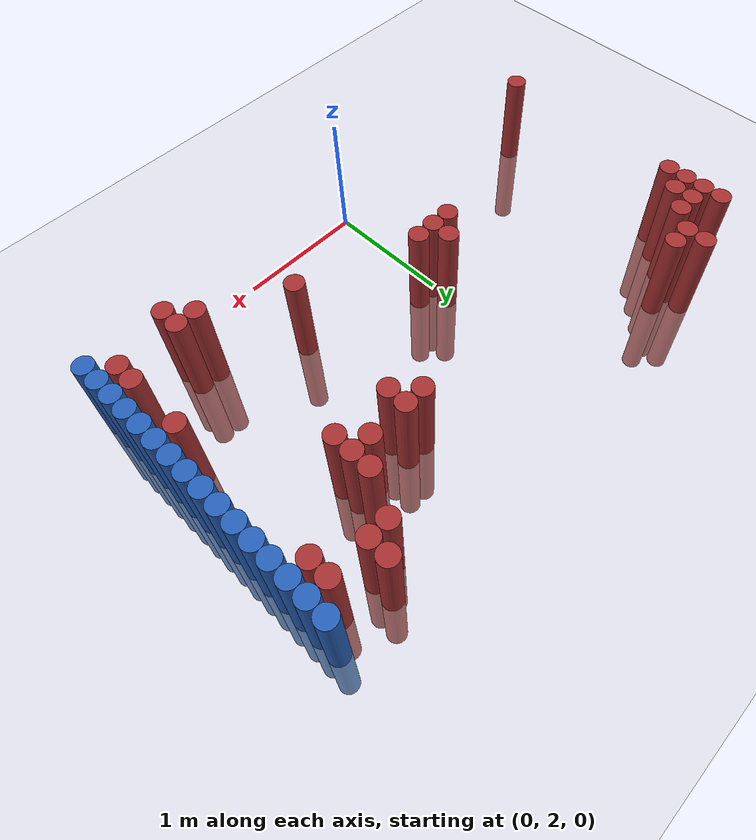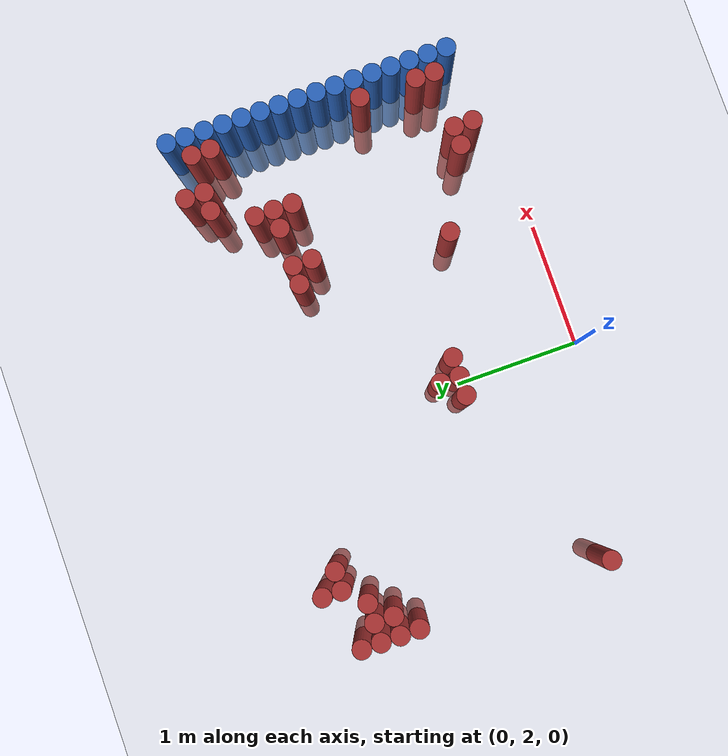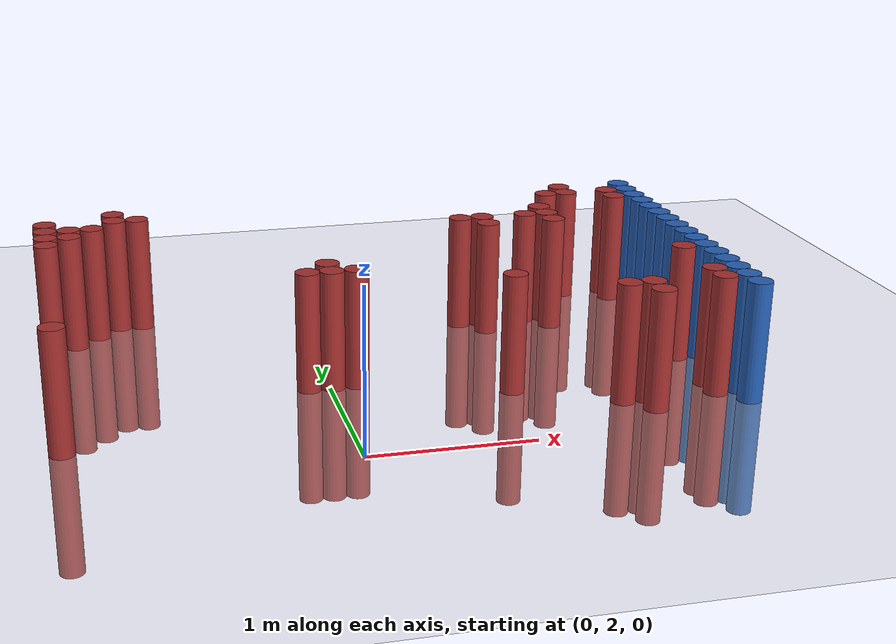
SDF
<sdf version="1.6">
 <world name="default">
  <model name="ground_plane">
   <static>1</static>
   <link name="link">
    <collision name="collision">
     <geometry><plane><normal>0 0 1</normal><size>100 100</size></plane></geometry>
     <surface><friction><ode><mu>100</mu><mu2>50</mu2></ode></friction></surface>
    </collision>
    <visual name="visual">
     <cast_shadows>0</cast_shadows>
     <geometry><plane><normal>0 0 1</normal><size>100 100</size></plane></geometry>
     <material>
      <script><uri>file://media/materials/scripts/gazebo.material</uri><name>Gazebo/Grey</name></script>
     </material>
    </visual>
   </link>
  </model>
  <model name="unit_cylinder_149">
   <static>1</static>
   <pose>-1.625000 2.425000 0.000000 0.000000 0.000000 0.000000</pose>
   <link name="link">
    <inertial>
     <mass>1</mass>
     <inertia><ixx>0.145833</ixx><ixy>0</ixy><ixz>0</ixz><iyy>0.145833</iyy><iyz>0</iyz><izz>0.125</izz></inertia>
    </inertial>
    <collision name="collision">
     <geometry><cylinder><radius>0.075000</radius><length>1.5</length></cylinder></geometry>
    </collision>
    <visual name="visual">
     <geometry><cylinder><radius>0.075000</radius><length>1.5</length></cylinder></geometry>
     <material>
      <ambient>0.648000 0.192000 0.192000 1</ambient>
      <diffuse>0.648000 0.192000 0.192000 1</diffuse>
     </material>
     <material>
      <script><name>Gazebo/Grey</name><uri>file://media/materials/scripts/gazebo.material</uri></script>
     </material>
    </visual>
   </link>
  </model>
  <model name="unit_cylinder_150">
   <static>1</static>
   <pose>-1.625000 3.925000 0.000000 0.000000 0.000000 0.000000</pose>
   <link name="link">
    <inertial>
     <mass>1</mass>
     <inertia><ixx>0.145833</ixx><ixy>0</ixy><ixz>0</ixz><iyy>0.145833</iyy><iyz>0</iyz><izz>0.125</izz></inertia>
    </inertial>
    <collision name="collision">
     <geometry><cylinder><radius>0.075000</radius><length>1.5</length></cylinder></geometry>
    </collision>
    <visual name="visual">
     <geometry><cylinder><radius>0.075000</radius><length>1.5</length></cylinder></geometry>
     <material>
      <ambient>0.648000 0.192000 0.192000 1</ambient>
      <diffuse>0.648000 0.192000 0.192000 1</diffuse>
     </material>
     <material>
      <script><name>Gazebo/Grey</name><uri>file://media/materials/scripts/gazebo.material</uri></script>
     </material>
    </visual>
   </link>
  </model>
  <model name="unit_cylinder_151">
   <static>1</static>
   <pose>-1.625000 4.075000 0.000000 0.000000 0.000000 0.000000</pose>
   <link name="link">
    <inertial>
     <mass>1</mass>
     <inertia><ixx>0.145833</ixx><ixy>0</ixy><ixz>0</ixz><iyy>0.145833</iyy><iyz>0</iyz><izz>0.125</izz></inertia>
    </inertial>
    <collision name="collision">
     <geometry><cylinder><radius>0.075000</radius><length>1.5</length></cylinder></geometry>
    </collision>
    <visual name="visual">
     <geometry><cylinder><radius>0.075000</radius><length>1.5</length></cylinder></geometry>
     <material>
      <ambient>0.648000 0.192000 0.192000 1</ambient>
      <diffuse>0.648000 0.192000 0.192000 1</diffuse>
     </material>
     <material>
      <script><name>Gazebo/Grey</name><uri>file://media/materials/scripts/gazebo.material</uri></script>
     </material>
    </visual>
   </link>
  </model>
  <model name="unit_cylinder_152">
   <static>1</static>
   <pose>-1.625000 4.225000 0.000000 0.000000 0.000000 0.000000</pose>
   <link name="link">
    <inertial>
     <mass>1</mass>
     <inertia><ixx>0.145833</ixx><ixy>0</ixy><ixz>0</ixz><iyy>0.145833</iyy><iyz>0</iyz><izz>0.125</izz></inertia>
    </inertial>
    <collision name="collision">
     <geometry><cylinder><radius>0.075000</radius><length>1.5</length></cylinder></geometry>
    </collision>
    <visual name="visual">
     <geometry><cylinder><radius>0.075000</radius><length>1.5</length></cylinder></geometry>
     <material>
      <ambient>0.648000 0.192000 0.192000 1</ambient>
      <diffuse>0.648000 0.192000 0.192000 1</diffuse>
     </material>
     <material>
      <script><name>Gazebo/Grey</name><uri>file://media/materials/scripts/gazebo.material</uri></script>
     </material>
    </visual>
   </link>
  </model>
  <model name="unit_cylinder_153">
   <static>1</static>
   <pose>-1.625000 4.375000 0.000000 0.000000 0.000000 0.000000</pose>
   <link name="link">
    <inertial>
     <mass>1</mass>
     <inertia><ixx>0.145833</ixx><ixy>0</ixy><ixz>0</ixz><iyy>0.145833</iyy><iyz>0</iyz><izz>0.125</izz></inertia>
    </inertial>
    <collision name="collision">
     <geometry><cylinder><radius>0.075000</radius><length>1.5</length></cylinder></geometry>
    </collision>
    <visual name="visual">
     <geometry><cylinder><radius>0.075000</radius><length>1.5</length></cylinder></geometry>
     <material>
      <ambient>0.648000 0.192000 0.192000 1</ambient>
      <diffuse>0.648000 0.192000 0.192000 1</diffuse>
     </material>
     <material>
      <script><name>Gazebo/Grey</name><uri>file://media/materials/scripts/gazebo.material</uri></script>
     </material>
    </visual>
   </link>
  </model>
  <model name="unit_cylinder_159">
   <static>1</static>
   <pose>-1.475000 4.075000 0.000000 0.000000 0.000000 0.000000</pose>
   <link name="link">
    <inertial>
     <mass>1</mass>
     <inertia><ixx>0.145833</ixx><ixy>0</ixy><ixz>0</ixz><iyy>0.145833</iyy><iyz>0</iyz><izz>0.125</izz></inertia>
    </inertial>
    <collision name="collision">
     <geometry><cylinder><radius>0.075000</radius><length>1.5</length></cylinder></geometry>
    </collision>
    <visual name="visual">
     <geometry><cylinder><radius>0.075000</radius><length>1.5</length></cylinder></geometry>
     <material>
      <ambient>0.648000 0.192000 0.192000 1</ambient>
      <diffuse>0.648000 0.192000 0.192000 1</diffuse>
     </material>
     <material>
      <script><name>Gazebo/Grey</name><uri>file://media/materials/scripts/gazebo.material</uri></script>
     </material>
    </visual>
   </link>
  </model>
  <model name="unit_cylinder_160">
   <static>1</static>
   <pose>-1.475000 4.225000 0.000000 0.000000 0.000000 0.000000</pose>
   <link name="link">
    <inertial>
     <mass>1</mass>
     <inertia><ixx>0.145833</ixx><ixy>0</ixy><ixz>0</ixz><iyy>0.145833</iyy><iyz>0</iyz><izz>0.125</izz></inertia>
    </inertial>
    <collision name="collision">
     <geometry><cylinder><radius>0.075000</radius><length>1.5</length></cylinder></geometry>
    </collision>
    <visual name="visual">
     <geometry><cylinder><radius>0.075000</radius><length>1.5</length></cylinder></geometry>
     <material>
      <ambient>0.648000 0.192000 0.192000 1</ambient>
      <diffuse>0.648000 0.192000 0.192000 1</diffuse>
     </material>
     <material>
      <script><name>Gazebo/Grey</name><uri>file://media/materials/scripts/gazebo.material</uri></script>
     </material>
    </visual>
   </link>
  </model>
  <model name="unit_cylinder_163">
   <static>1</static>
   <pose>-1.325000 4.225000 0.000000 0.000000 0.000000 0.000000</pose>
   <link name="link">
    <inertial>
     <mass>1</mass>
     <inertia><ixx>0.145833</ixx><ixy>0</ixy><ixz>0</ixz><iyy>0.145833</iyy><iyz>0</iyz><izz>0.125</izz></inertia>
    </inertial>
    <collision name="collision">
     <geometry><cylinder><radius>0.075000</radius><length>1.5</length></cylinder></geometry>
    </collision>
    <visual name="visual">
     <geometry><cylinder><radius>0.075000</radius><length>1.5</length></cylinder></geometry>
     <material>
      <ambient>0.648000 0.192000 0.192000 1</ambient>
      <diffuse>0.648000 0.192000 0.192000 1</diffuse>
     </material>
     <material>
      <script><name>Gazebo/Grey</name><uri>file://media/materials/scripts/gazebo.material</uri></script>
     </material>
    </visual>
   </link>
  </model>
  <model name="unit_cylinder_165">
   <static>1</static>
   <pose>-1.175000 4.375000 0.000000 0.000000 0.000000 0.000000</pose>
   <link name="link">
    <inertial>
     <mass>1</mass>
     <inertia><ixx>0.145833</ixx><ixy>0</ixy><ixz>0</ixz><iyy>0.145833</iyy><iyz>0</iyz><izz>0.125</izz></inertia>
    </inertial>
    <collision name="collision">
     <geometry><cylinder><radius>0.075000</radius><length>1.5</length></cylinder></geometry>
    </collision>
    <visual name="visual">
     <geometry><cylinder><radius>0.075000</radius><length>1.5</length></cylinder></geometry>
     <material>
      <ambient>0.648000 0.192000 0.192000 1</ambient>
      <diffuse>0.648000 0.192000 0.192000 1</diffuse>
     </material>
     <material>
      <script><name>Gazebo/Grey</name><uri>file://media/materials/scripts/gazebo.material</uri></script>
     </material>
    </visual>
   </link>
  </model>
  <model name="unit_cylinder_166">
   <static>1</static>
   <pose>-1.175000 4.525000 0.000000 0.000000 0.000000 0.000000</pose>
   <link name="link">
    <inertial>
     <mass>1</mass>
     <inertia><ixx>0.145833</ixx><ixy>0</ixy><ixz>0</ixz><iyy>0.145833</iyy><iyz>0</iyz><izz>0.125</izz></inertia>
    </inertial>
    <collision name="collision">
     <geometry><cylinder><radius>0.075000</radius><length>1.5</length></cylinder></geometry>
    </collision>
    <visual name="visual">
     <geometry><cylinder><radius>0.075000</radius><length>1.5</length></cylinder></geometry>
     <material>
      <ambient>0.648000 0.192000 0.192000 1</ambient>
      <diffuse>0.648000 0.192000 0.192000 1</diffuse>
     </material>
     <material>
      <script><name>Gazebo/Grey</name><uri>file://media/materials/scripts/gazebo.material</uri></script>
     </material>
    </visual>
   </link>
  </model>
  <model name="unit_cylinder_167">
   <static>1</static>
   <pose>-1.025000 4.375000 0.000000 0.000000 0.000000 0.000000</pose>
   <link name="link">
    <inertial>
     <mass>1</mass>
     <inertia><ixx>0.145833</ixx><ixy>0</ixy><ixz>0</ixz><iyy>0.145833</iyy><iyz>0</iyz><izz>0.125</izz></inertia>
    </inertial>
    <collision name="collision">
     <geometry><cylinder><radius>0.075000</radius><length>1.5</length></cylinder></geometry>
    </collision>
    <visual name="visual">
     <geometry><cylinder><radius>0.075000</radius><length>1.5</length></cylinder></geometry>
     <material>
      <ambient>0.648000 0.192000 0.192000 1</ambient>
      <diffuse>0.648000 0.192000 0.192000 1</diffuse>
     </material>
     <material>
      <script><name>Gazebo/Grey</name><uri>file://media/materials/scripts/gazebo.material</uri></script>
     </material>
    </visual>
   </link>
  </model>
  <model name="unit_cylinder_168">
   <static>1</static>
   <pose>-0.125000 3.025000 0.000000 0.000000 0.000000 0.000000</pose>
   <link name="link">
    <inertial>
     <mass>1</mass>
     <inertia><ixx>0.145833</ixx><ixy>0</ixy><ixz>0</ixz><iyy>0.145833</iyy><iyz>0</iyz><izz>0.125</izz></inertia>
    </inertial>
    <collision name="collision">
     <geometry><cylinder><radius>0.075000</radius><length>1.5</length></cylinder></geometry>
    </collision>
    <visual name="visual">
     <geometry><cylinder><radius>0.075000</radius><length>1.5</length></cylinder></geometry>
     <material>
      <ambient>0.648000 0.192000 0.192000 1</ambient>
      <diffuse>0.648000 0.192000 0.192000 1</diffuse>
     </material>
     <material>
      <script><name>Gazebo/Grey</name><uri>file://media/materials/scripts/gazebo.material</uri></script>
     </material>
    </visual>
   </link>
  </model>
  <model name="unit_cylinder_170">
   <static>1</static>
   <pose>0.025000 3.025000 0.000000 0.000000 0.000000 0.000000</pose>
   <link name="link">
    <inertial>
     <mass>1</mass>
     <inertia><ixx>0.145833</ixx><ixy>0</ixy><ixz>0</ixz><iyy>0.145833</iyy><iyz>0</iyz><izz>0.125</izz></inertia>
    </inertial>
    <collision name="collision">
     <geometry><cylinder><radius>0.075000</radius><length>1.5</length></cylinder></geometry>
    </collision>
    <visual name="visual">
     <geometry><cylinder><radius>0.075000</radius><length>1.5</length></cylinder></geometry>
     <material>
      <ambient>0.648000 0.192000 0.192000 1</ambient>
      <diffuse>0.648000 0.192000 0.192000 1</diffuse>
     </material>
     <material>
      <script><name>Gazebo/Grey</name><uri>file://media/materials/scripts/gazebo.material</uri></script>
     </material>
    </visual>
   </link>
  </model>
  <model name="unit_cylinder_171">
   <static>1</static>
   <pose>0.025000 3.175000 0.000000 0.000000 0.000000 0.000000</pose>
   <link name="link">
    <inertial>
     <mass>1</mass>
     <inertia><ixx>0.145833</ixx><ixy>0</ixy><ixz>0</ixz><iyy>0.145833</iyy><iyz>0</iyz><izz>0.125</izz></inertia>
    </inertial>
    <collision name="collision">
     <geometry><cylinder><radius>0.075000</radius><length>1.5</length></cylinder></geometry>
    </collision>
    <visual name="visual">
     <geometry><cylinder><radius>0.075000</radius><length>1.5</length></cylinder></geometry>
     <material>
      <ambient>0.648000 0.192000 0.192000 1</ambient>
      <diffuse>0.648000 0.192000 0.192000 1</diffuse>
     </material>
     <material>
      <script><name>Gazebo/Grey</name><uri>file://media/materials/scripts/gazebo.material</uri></script>
     </material>
    </visual>
   </link>
  </model>
  <model name="unit_cylinder_175">
   <static>1</static>
   <pose>0.175000 3.025000 0.000000 0.000000 0.000000 0.000000</pose>
   <link name="link">
    <inertial>
     <mass>1</mass>
     <inertia><ixx>0.145833</ixx><ixy>0</ixy><ixz>0</ixz><iyy>0.145833</iyy><iyz>0</iyz><izz>0.125</izz></inertia>
    </inertial>
    <collision name="collision">
     <geometry><cylinder><radius>0.075000</radius><length>1.5</length></cylinder></geometry>
    </collision>
    <visual name="visual">
     <geometry><cylinder><radius>0.075000</radius><length>1.5</length></cylinder></geometry>
     <material>
      <ambient>0.648000 0.192000 0.192000 1</ambient>
      <diffuse>0.648000 0.192000 0.192000 1</diffuse>
     </material>
     <material>
      <script><name>Gazebo/Grey</name><uri>file://media/materials/scripts/gazebo.material</uri></script>
     </material>
    </visual>
   </link>
  </model>
  <model name="unit_cylinder_179">
   <static>1</static>
   <pose>1.075000 2.725000 0.000000 0.000000 0.000000 0.000000</pose>
   <link name="link">
    <inertial>
     <mass>1</mass>
     <inertia><ixx>0.145833</ixx><ixy>0</ixy><ixz>0</ixz><iyy>0.145833</iyy><iyz>0</iyz><izz>0.125</izz></inertia>
    </inertial>
    <collision name="collision">
     <geometry><cylinder><radius>0.075000</radius><length>1.5</length></cylinder></geometry>
    </collision>
    <visual name="visual">
     <geometry><cylinder><radius>0.075000</radius><length>1.5</length></cylinder></geometry>
     <material>
      <ambient>0.648000 0.192000 0.192000 1</ambient>
      <diffuse>0.648000 0.192000 0.192000 1</diffuse>
     </material>
     <material>
      <script><name>Gazebo/Grey</name><uri>file://media/materials/scripts/gazebo.material</uri></script>
     </material>
    </visual>
   </link>
  </model>
  <model name="unit_cylinder_180">
   <static>1</static>
   <pose>1.075000 3.925000 0.000000 0.000000 0.000000 0.000000</pose>
   <link name="link">
    <inertial>
     <mass>1</mass>
     <inertia><ixx>0.145833</ixx><ixy>0</ixy><ixz>0</ixz><iyy>0.145833</iyy><iyz>0</iyz><izz>0.125</izz></inertia>
    </inertial>
    <collision name="collision">
     <geometry><cylinder><radius>0.075000</radius><length>1.5</length></cylinder></geometry>
    </collision>
    <visual name="visual">
     <geometry><cylinder><radius>0.075000</radius><length>1.5</length></cylinder></geometry>
     <material>
      <ambient>0.648000 0.192000 0.192000 1</ambient>
      <diffuse>0.648000 0.192000 0.192000 1</diffuse>
     </material>
     <material>
      <script><name>Gazebo/Grey</name><uri>file://media/materials/scripts/gazebo.material</uri></script>
     </material>
    </visual>
   </link>
  </model>
  <model name="unit_cylinder_182">
   <static>1</static>
   <pose>1.225000 3.775000 0.000000 0.000000 0.000000 0.000000</pose>
   <link name="link">
    <inertial>
     <mass>1</mass>
     <inertia><ixx>0.145833</ixx><ixy>0</ixy><ixz>0</ixz><iyy>0.145833</iyy><iyz>0</iyz><izz>0.125</izz></inertia>
    </inertial>
    <collision name="collision">
     <geometry><cylinder><radius>0.075000</radius><length>1.5</length></cylinder></geometry>
    </collision>
    <visual name="visual">
     <geometry><cylinder><radius>0.075000</radius><length>1.5</length></cylinder></geometry>
     <material>
      <ambient>0.648000 0.192000 0.192000 1</ambient>
      <diffuse>0.648000 0.192000 0.192000 1</diffuse>
     </material>
     <material>
      <script><name>Gazebo/Grey</name><uri>file://media/materials/scripts/gazebo.material</uri></script>
     </material>
    </visual>
   </link>
  </model>
  <model name="unit_cylinder_183">
   <static>1</static>
   <pose>1.225000 3.925000 0.000000 0.000000 0.000000 0.000000</pose>
   <link name="link">
    <inertial>
     <mass>1</mass>
     <inertia><ixx>0.145833</ixx><ixy>0</ixy><ixz>0</ixz><iyy>0.145833</iyy><iyz>0</iyz><izz>0.125</izz></inertia>
    </inertial>
    <collision name="collision">
     <geometry><cylinder><radius>0.075000</radius><length>1.5</length></cylinder></geometry>
    </collision>
    <visual name="visual">
     <geometry><cylinder><radius>0.075000</radius><length>1.5</length></cylinder></geometry>
     <material>
      <ambient>0.648000 0.192000 0.192000 1</ambient>
      <diffuse>0.648000 0.192000 0.192000 1</diffuse>
     </material>
     <material>
      <script><name>Gazebo/Grey</name><uri>file://media/materials/scripts/gazebo.material</uri></script>
     </material>
    </visual>
   </link>
  </model>
  <model name="unit_cylinder_184">
   <static>1</static>
   <pose>1.525000 3.925000 0.000000 0.000000 0.000000 0.000000</pose>
   <link name="link">
    <inertial>
     <mass>1</mass>
     <inertia><ixx>0.145833</ixx><ixy>0</ixy><ixz>0</ixz><iyy>0.145833</iyy><iyz>0</iyz><izz>0.125</izz></inertia>
    </inertial>
    <collision name="collision">
     <geometry><cylinder><radius>0.075000</radius><length>1.5</length></cylinder></geometry>
    </collision>
    <visual name="visual">
     <geometry><cylinder><radius>0.075000</radius><length>1.5</length></cylinder></geometry>
     <material>
      <ambient>0.648000 0.192000 0.192000 1</ambient>
      <diffuse>0.648000 0.192000 0.192000 1</diffuse>
     </material>
     <material>
      <script><name>Gazebo/Grey</name><uri>file://media/materials/scripts/gazebo.material</uri></script>
     </material>
    </visual>
   </link>
  </model>
  <model name="unit_cylinder_186">
   <static>1</static>
   <pose>1.675000 2.425000 0.000000 0.000000 0.000000 0.000000</pose>
   <link name="link">
    <inertial>
     <mass>1</mass>
     <inertia><ixx>0.145833</ixx><ixy>0</ixy><ixz>0</ixz><iyy>0.145833</iyy><iyz>0</iyz><izz>0.125</izz></inertia>
    </inertial>
    <collision name="collision">
     <geometry><cylinder><radius>0.075000</radius><length>1.5</length></cylinder></geometry>
    </collision>
    <visual name="visual">
     <geometry><cylinder><radius>0.075000</radius><length>1.5</length></cylinder></geometry>
     <material>
      <ambient>0.648000 0.192000 0.192000 1</ambient>
      <diffuse>0.648000 0.192000 0.192000 1</diffuse>
     </material>
     <material>
      <script><name>Gazebo/Grey</name><uri>file://media/materials/scripts/gazebo.material</uri></script>
     </material>
    </visual>
   </link>
  </model>
  <model name="unit_cylinder_187">
   <static>1</static>
   <pose>1.675000 3.775000 0.000000 0.000000 0.000000 0.000000</pose>
   <link name="link">
    <inertial>
     <mass>1</mass>
     <inertia><ixx>0.145833</ixx><ixy>0</ixy><ixz>0</ixz><iyy>0.145833</iyy><iyz>0</iyz><izz>0.125</izz></inertia>
    </inertial>
    <collision name="collision">
     <geometry><cylinder><radius>0.075000</radius><length>1.5</length></cylinder></geometry>
    </collision>
    <visual name="visual">
     <geometry><cylinder><radius>0.075000</radius><length>1.5</length></cylinder></geometry>
     <material>
      <ambient>0.648000 0.192000 0.192000 1</ambient>
      <diffuse>0.648000 0.192000 0.192000 1</diffuse>
     </material>
     <material>
      <script><name>Gazebo/Grey</name><uri>file://media/materials/scripts/gazebo.material</uri></script>
     </material>
    </visual>
   </link>
  </model>
  <model name="unit_cylinder_188">
   <static>1</static>
   <pose>1.675000 3.925000 0.000000 0.000000 0.000000 0.000000</pose>
   <link name="link">
    <inertial>
     <mass>1</mass>
     <inertia><ixx>0.145833</ixx><ixy>0</ixy><ixz>0</ixz><iyy>0.145833</iyy><iyz>0</iyz><izz>0.125</izz></inertia>
    </inertial>
    <collision name="collision">
     <geometry><cylinder><radius>0.075000</radius><length>1.5</length></cylinder></geometry>
    </collision>
    <visual name="visual">
     <geometry><cylinder><radius>0.075000</radius><length>1.5</length></cylinder></geometry>
     <material>
      <ambient>0.648000 0.192000 0.192000 1</ambient>
      <diffuse>0.648000 0.192000 0.192000 1</diffuse>
     </material>
     <material>
      <script><name>Gazebo/Grey</name><uri>file://media/materials/scripts/gazebo.material</uri></script>
     </material>
    </visual>
   </link>
  </model>
  <model name="unit_cylinder_189">
   <static>1</static>
   <pose>1.675000 4.075000 0.000000 0.000000 0.000000 0.000000</pose>
   <link name="link">
    <inertial>
     <mass>1</mass>
     <inertia><ixx>0.145833</ixx><ixy>0</ixy><ixz>0</ixz><iyy>0.145833</iyy><iyz>0</iyz><izz>0.125</izz></inertia>
    </inertial>
    <collision name="collision">
     <geometry><cylinder><radius>0.075000</radius><length>1.5</length></cylinder></geometry>
    </collision>
    <visual name="visual">
     <geometry><cylinder><radius>0.075000</radius><length>1.5</length></cylinder></geometry>
     <material>
      <ambient>0.648000 0.192000 0.192000 1</ambient>
      <diffuse>0.648000 0.192000 0.192000 1</diffuse>
     </material>
     <material>
      <script><name>Gazebo/Grey</name><uri>file://media/materials/scripts/gazebo.material</uri></script>
     </material>
    </visual>
   </link>
  </model>
  <model name="unit_cylinder_194">
   <static>1</static>
   <pose>1.825000 2.275000 0.000000 0.000000 0.000000 0.000000</pose>
   <link name="link">
    <inertial>
     <mass>1</mass>
     <inertia><ixx>0.145833</ixx><ixy>0</ixy><ixz>0</ixz><iyy>0.145833</iyy><iyz>0</iyz><izz>0.125</izz></inertia>
    </inertial>
    <collision name="collision">
     <geometry><cylinder><radius>0.075000</radius><length>1.5</length></cylinder></geometry>
    </collision>
    <visual name="visual">
     <geometry><cylinder><radius>0.075000</radius><length>1.5</length></cylinder></geometry>
     <material>
      <ambient>0.648000 0.192000 0.192000 1</ambient>
      <diffuse>0.648000 0.192000 0.192000 1</diffuse>
     </material>
     <material>
      <script><name>Gazebo/Grey</name><uri>file://media/materials/scripts/gazebo.material</uri></script>
     </material>
    </visual>
   </link>
  </model>
  <model name="unit_cylinder_195">
   <static>1</static>
   <pose>1.825000 2.425000 0.000000 0.000000 0.000000 0.000000</pose>
   <link name="link">
    <inertial>
     <mass>1</mass>
     <inertia><ixx>0.145833</ixx><ixy>0</ixy><ixz>0</ixz><iyy>0.145833</iyy><iyz>0</iyz><izz>0.125</izz></inertia>
    </inertial>
    <collision name="collision">
     <geometry><cylinder><radius>0.075000</radius><length>1.5</length></cylinder></geometry>
    </collision>
    <visual name="visual">
     <geometry><cylinder><radius>0.075000</radius><length>1.5</length></cylinder></geometry>
     <material>
      <ambient>0.648000 0.192000 0.192000 1</ambient>
      <diffuse>0.648000 0.192000 0.192000 1</diffuse>
     </material>
     <material>
      <script><name>Gazebo/Grey</name><uri>file://media/materials/scripts/gazebo.material</uri></script>
     </material>
    </visual>
   </link>
  </model>
  <model name="unit_cylinder_196">
   <static>1</static>
   <pose>1.825000 4.375000 0.000000 0.000000 0.000000 0.000000</pose>
   <link name="link">
    <inertial>
     <mass>1</mass>
     <inertia><ixx>0.145833</ixx><ixy>0</ixy><ixz>0</ixz><iyy>0.145833</iyy><iyz>0</iyz><izz>0.125</izz></inertia>
    </inertial>
    <collision name="collision">
     <geometry><cylinder><radius>0.075000</radius><length>1.5</length></cylinder></geometry>
    </collision>
    <visual name="visual">
     <geometry><cylinder><radius>0.075000</radius><length>1.5</length></cylinder></geometry>
     <material>
      <ambient>0.648000 0.192000 0.192000 1</ambient>
      <diffuse>0.648000 0.192000 0.192000 1</diffuse>
     </material>
     <material>
      <script><name>Gazebo/Grey</name><uri>file://media/materials/scripts/gazebo.material</uri></script>
     </material>
    </visual>
   </link>
  </model>
  <model name="unit_cylinder_198">
   <static>1</static>
   <pose>1.975000 4.375000 0.000000 0.000000 0.000000 0.000000</pose>
   <link name="link">
    <inertial>
     <mass>1</mass>
     <inertia><ixx>0.145833</ixx><ixy>0</ixy><ixz>0</ixz><iyy>0.145833</iyy><iyz>0</iyz><izz>0.125</izz></inertia>
    </inertial>
    <collision name="collision">
     <geometry><cylinder><radius>0.075000</radius><length>1.5</length></cylinder></geometry>
    </collision>
    <visual name="visual">
     <geometry><cylinder><radius>0.075000</radius><length>1.5</length></cylinder></geometry>
     <material>
      <ambient>0.648000 0.192000 0.192000 1</ambient>
      <diffuse>0.648000 0.192000 0.192000 1</diffuse>
     </material>
     <material>
      <script><name>Gazebo/Grey</name><uri>file://media/materials/scripts/gazebo.material</uri></script>
     </material>
    </visual>
   </link>
  </model>
  <model name="unit_cylinder_199">
   <static>1</static>
   <pose>1.975000 4.525000 0.000000 0.000000 0.000000 0.000000</pose>
   <link name="link">
    <inertial>
     <mass>1</mass>
     <inertia><ixx>0.145833</ixx><ixy>0</ixy><ixz>0</ixz><iyy>0.145833</iyy><iyz>0</iyz><izz>0.125</izz></inertia>
    </inertial>
    <collision name="collision">
     <geometry><cylinder><radius>0.075000</radius><length>1.5</length></cylinder></geometry>
    </collision>
    <visual name="visual">
     <geometry><cylinder><radius>0.075000</radius><length>1.5</length></cylinder></geometry>
     <material>
      <ambient>0.648000 0.192000 0.192000 1</ambient>
      <diffuse>0.648000 0.192000 0.192000 1</diffuse>
     </material>
     <material>
      <script><name>Gazebo/Grey</name><uri>file://media/materials/scripts/gazebo.material</uri></script>
     </material>
    </visual>
   </link>
  </model>
  <model name="unit_cylinder_216">
   <static>1</static>
   <pose>2.275000 2.425000 0.000000 0.000000 0.000000 0.000000</pose>
   <link name="link">
    <inertial>
     <mass>1</mass>
     <inertia><ixx>0.145833</ixx><ixy>0</ixy><ixz>0</ixz><iyy>0.145833</iyy><iyz>0</iyz><izz>0.125</izz></inertia>
    </inertial>
    <collision name="collision">
     <geometry><cylinder><radius>0.075000</radius><length>1.5</length></cylinder></geometry>
    </collision>
    <visual name="visual">
     <geometry><cylinder><radius>0.075000</radius><length>1.5</length></cylinder></geometry>
     <material>
      <ambient>0.648000 0.192000 0.192000 1</ambient>
      <diffuse>0.648000 0.192000 0.192000 1</diffuse>
     </material>
     <material>
      <script><name>Gazebo/Grey</name><uri>file://media/materials/scripts/gazebo.material</uri></script>
     </material>
    </visual>
   </link>
  </model>
  <model name="unit_cylinder_217">
   <static>1</static>
   <pose>2.275000 2.575000 0.000000 0.000000 0.000000 0.000000</pose>
   <link name="link">
    <inertial>
     <mass>1</mass>
     <inertia><ixx>0.145833</ixx><ixy>0</ixy><ixz>0</ixz><iyy>0.145833</iyy><iyz>0</iyz><izz>0.125</izz></inertia>
    </inertial>
    <collision name="collision">
     <geometry><cylinder><radius>0.075000</radius><length>1.5</length></cylinder></geometry>
    </collision>
    <visual name="visual">
     <geometry><cylinder><radius>0.075000</radius><length>1.5</length></cylinder></geometry>
     <material>
      <ambient>0.648000 0.192000 0.192000 1</ambient>
      <diffuse>0.648000 0.192000 0.192000 1</diffuse>
     </material>
     <material>
      <script><name>Gazebo/Grey</name><uri>file://media/materials/scripts/gazebo.material</uri></script>
     </material>
    </visual>
   </link>
  </model>
  <model name="unit_cylinder_218">
   <static>1</static>
   <pose>2.275000 3.025000 0.000000 0.000000 0.000000 0.000000</pose>
   <link name="link">
    <inertial>
     <mass>1</mass>
     <inertia><ixx>0.145833</ixx><ixy>0</ixy><ixz>0</ixz><iyy>0.145833</iyy><iyz>0</iyz><izz>0.125</izz></inertia>
    </inertial>
    <collision name="collision">
     <geometry><cylinder><radius>0.075000</radius><length>1.5</length></cylinder></geometry>
    </collision>
    <visual name="visual">
     <geometry><cylinder><radius>0.075000</radius><length>1.5</length></cylinder></geometry>
     <material>
      <ambient>0.648000 0.192000 0.192000 1</ambient>
      <diffuse>0.648000 0.192000 0.192000 1</diffuse>
     </material>
     <material>
      <script><name>Gazebo/Grey</name><uri>file://media/materials/scripts/gazebo.material</uri></script>
     </material>
    </visual>
   </link>
  </model>
  <model name="unit_cylinder_219">
   <static>1</static>
   <pose>2.275000 4.225000 0.000000 0.000000 0.000000 0.000000</pose>
   <link name="link">
    <inertial>
     <mass>1</mass>
     <inertia><ixx>0.145833</ixx><ixy>0</ixy><ixz>0</ixz><iyy>0.145833</iyy><iyz>0</iyz><izz>0.125</izz></inertia>
    </inertial>
    <collision name="collision">
     <geometry><cylinder><radius>0.075000</radius><length>1.5</length></cylinder></geometry>
    </collision>
    <visual name="visual">
     <geometry><cylinder><radius>0.075000</radius><length>1.5</length></cylinder></geometry>
     <material>
      <ambient>0.648000 0.192000 0.192000 1</ambient>
      <diffuse>0.648000 0.192000 0.192000 1</diffuse>
     </material>
     <material>
      <script><name>Gazebo/Grey</name><uri>file://media/materials/scripts/gazebo.material</uri></script>
     </material>
    </visual>
   </link>
  </model>
  <model name="unit_cylinder_220">
   <static>1</static>
   <pose>2.275000 4.375000 0.000000 0.000000 0.000000 0.000000</pose>
   <link name="link">
    <inertial>
     <mass>1</mass>
     <inertia><ixx>0.145833</ixx><ixy>0</ixy><ixz>0</ixz><iyy>0.145833</iyy><iyz>0</iyz><izz>0.125</izz></inertia>
    </inertial>
    <collision name="collision">
     <geometry><cylinder><radius>0.075000</radius><length>1.5</length></cylinder></geometry>
    </collision>
    <visual name="visual">
     <geometry><cylinder><radius>0.075000</radius><length>1.5</length></cylinder></geometry>
     <material>
      <ambient>0.648000 0.192000 0.192000 1</ambient>
      <diffuse>0.648000 0.192000 0.192000 1</diffuse>
     </material>
     <material>
      <script><name>Gazebo/Grey</name><uri>file://media/materials/scripts/gazebo.material</uri></script>
     </material>
    </visual>
   </link>
  </model>
  <model name="unit_cylinder_235">
   <static>1</static>
   <pose>2.425000 2.275000 0.000000 0.000000 0.000000 0.000000</pose>
   <link name="link">
    <inertial>
     <mass>1</mass>
     <inertia><ixx>0.145833</ixx><ixy>0</ixy><ixz>0</ixz><iyy>0.145833</iyy><iyz>0</iyz><izz>0.125</izz></inertia>
    </inertial>
    <collision name="collision">
     <geometry><cylinder><radius>0.075000</radius><length>1.5</length></cylinder></geometry>
    </collision>
    <visual name="visual">
     <geometry><cylinder><radius>0.075000</radius><length>1.5</length></cylinder></geometry>
     <material>
      <ambient>0.152000 0.379000 0.720000 1</ambient>
      <diffuse>0.152000 0.379000 0.720000 1</diffuse>
     </material>
     <material>
      <script><name>Gazebo/Grey</name><uri>file://media/materials/scripts/gazebo.material</uri></script>
     </material>
    </visual>
   </link>
  </model>
  <model name="unit_cylinder_236">
   <static>1</static>
   <pose>2.425000 2.425000 0.000000 0.000000 0.000000 0.000000</pose>
   <link name="link">
    <inertial>
     <mass>1</mass>
     <inertia><ixx>0.145833</ixx><ixy>0</ixy><ixz>0</ixz><iyy>0.145833</iyy><iyz>0</iyz><izz>0.125</izz></inertia>
    </inertial>
    <collision name="collision">
     <geometry><cylinder><radius>0.075000</radius><length>1.5</length></cylinder></geometry>
    </collision>
    <visual name="visual">
     <geometry><cylinder><radius>0.075000</radius><length>1.5</length></cylinder></geometry>
     <material>
      <ambient>0.152000 0.379000 0.720000 1</ambient>
      <diffuse>0.152000 0.379000 0.720000 1</diffuse>
     </material>
     <material>
      <script><name>Gazebo/Grey</name><uri>file://media/materials/scripts/gazebo.material</uri></script>
     </material>
    </visual>
   </link>
  </model>
  <model name="unit_cylinder_237">
   <static>1</static>
   <pose>2.425000 2.575000 0.000000 0.000000 0.000000 0.000000</pose>
   <link name="link">
    <inertial>
     <mass>1</mass>
     <inertia><ixx>0.145833</ixx><ixy>0</ixy><ixz>0</ixz><iyy>0.145833</iyy><iyz>0</iyz><izz>0.125</izz></inertia>
    </inertial>
    <collision name="collision">
     <geometry><cylinder><radius>0.075000</radius><length>1.5</length></cylinder></geometry>
    </collision>
    <visual name="visual">
     <geometry><cylinder><radius>0.075000</radius><length>1.5</length></cylinder></geometry>
     <material>
      <ambient>0.152000 0.379000 0.720000 1</ambient>
      <diffuse>0.152000 0.379000 0.720000 1</diffuse>
     </material>
     <material>
      <script><name>Gazebo/Grey</name><uri>file://media/materials/scripts/gazebo.material</uri></script>
     </material>
    </visual>
   </link>
  </model>
  <model name="unit_cylinder_238">
   <static>1</static>
   <pose>2.425000 2.725000 0.000000 0.000000 0.000000 0.000000</pose>
   <link name="link">
    <inertial>
     <mass>1</mass>
     <inertia><ixx>0.145833</ixx><ixy>0</ixy><ixz>0</ixz><iyy>0.145833</iyy><iyz>0</iyz><izz>0.125</izz></inertia>
    </inertial>
    <collision name="collision">
     <geometry><cylinder><radius>0.075000</radius><length>1.5</length></cylinder></geometry>
    </collision>
    <visual name="visual">
     <geometry><cylinder><radius>0.075000</radius><length>1.5</length></cylinder></geometry>
     <material>
      <ambient>0.152000 0.379000 0.720000 1</ambient>
      <diffuse>0.152000 0.379000 0.720000 1</diffuse>
     </material>
     <material>
      <script><name>Gazebo/Grey</name><uri>file://media/materials/scripts/gazebo.material</uri></script>
     </material>
    </visual>
   </link>
  </model>
  <model name="unit_cylinder_239">
   <static>1</static>
   <pose>2.425000 2.875000 0.000000 0.000000 0.000000 0.000000</pose>
   <link name="link">
    <inertial>
     <mass>1</mass>
     <inertia><ixx>0.145833</ixx><ixy>0</ixy><ixz>0</ixz><iyy>0.145833</iyy><iyz>0</iyz><izz>0.125</izz></inertia>
    </inertial>
    <collision name="collision">
     <geometry><cylinder><radius>0.075000</radius><length>1.5</length></cylinder></geometry>
    </collision>
    <visual name="visual">
     <geometry><cylinder><radius>0.075000</radius><length>1.5</length></cylinder></geometry>
     <material>
      <ambient>0.152000 0.379000 0.720000 1</ambient>
      <diffuse>0.152000 0.379000 0.720000 1</diffuse>
     </material>
     <material>
      <script><name>Gazebo/Grey</name><uri>file://media/materials/scripts/gazebo.material</uri></script>
     </material>
    </visual>
   </link>
  </model>
  <model name="unit_cylinder_240">
   <static>1</static>
   <pose>2.425000 3.025000 0.000000 0.000000 0.000000 0.000000</pose>
   <link name="link">
    <inertial>
     <mass>1</mass>
     <inertia><ixx>0.145833</ixx><ixy>0</ixy><ixz>0</ixz><iyy>0.145833</iyy><iyz>0</iyz><izz>0.125</izz></inertia>
    </inertial>
    <collision name="collision">
     <geometry><cylinder><radius>0.075000</radius><length>1.5</length></cylinder></geometry>
    </collision>
    <visual name="visual">
     <geometry><cylinder><radius>0.075000</radius><length>1.5</length></cylinder></geometry>
     <material>
      <ambient>0.152000 0.379000 0.720000 1</ambient>
      <diffuse>0.152000 0.379000 0.720000 1</diffuse>
     </material>
     <material>
      <script><name>Gazebo/Grey</name><uri>file://media/materials/scripts/gazebo.material</uri></script>
     </material>
    </visual>
   </link>
  </model>
  <model name="unit_cylinder_241">
   <static>1</static>
   <pose>2.425000 3.175000 0.000000 0.000000 0.000000 0.000000</pose>
   <link name="link">
    <inertial>
     <mass>1</mass>
     <inertia><ixx>0.145833</ixx><ixy>0</ixy><ixz>0</ixz><iyy>0.145833</iyy><iyz>0</iyz><izz>0.125</izz></inertia>
    </inertial>
    <collision name="collision">
     <geometry><cylinder><radius>0.075000</radius><length>1.5</length></cylinder></geometry>
    </collision>
    <visual name="visual">
     <geometry><cylinder><radius>0.075000</radius><length>1.5</length></cylinder></geometry>
     <material>
      <ambient>0.152000 0.379000 0.720000 1</ambient>
      <diffuse>0.152000 0.379000 0.720000 1</diffuse>
     </material>
     <material>
      <script><name>Gazebo/Grey</name><uri>file://media/materials/scripts/gazebo.material</uri></script>
     </material>
    </visual>
   </link>
  </model>
  <model name="unit_cylinder_242">
   <static>1</static>
   <pose>2.425000 3.325000 0.000000 0.000000 0.000000 0.000000</pose>
   <link name="link">
    <inertial>
     <mass>1</mass>
     <inertia><ixx>0.145833</ixx><ixy>0</ixy><ixz>0</ixz><iyy>0.145833</iyy><iyz>0</iyz><izz>0.125</izz></inertia>
    </inertial>
    <collision name="collision">
     <geometry><cylinder><radius>0.075000</radius><length>1.5</length></cylinder></geometry>
    </collision>
    <visual name="visual">
     <geometry><cylinder><radius>0.075000</radius><length>1.5</length></cylinder></geometry>
     <material>
      <ambient>0.152000 0.379000 0.720000 1</ambient>
      <diffuse>0.152000 0.379000 0.720000 1</diffuse>
     </material>
     <material>
      <script><name>Gazebo/Grey</name><uri>file://media/materials/scripts/gazebo.material</uri></script>
     </material>
    </visual>
   </link>
  </model>
  <model name="unit_cylinder_243">
   <static>1</static>
   <pose>2.425000 3.475000 0.000000 0.000000 0.000000 0.000000</pose>
   <link name="link">
    <inertial>
     <mass>1</mass>
     <inertia><ixx>0.145833</ixx><ixy>0</ixy><ixz>0</ixz><iyy>0.145833</iyy><iyz>0</iyz><izz>0.125</izz></inertia>
    </inertial>
    <collision name="collision">
     <geometry><cylinder><radius>0.075000</radius><length>1.5</length></cylinder></geometry>
    </collision>
    <visual name="visual">
     <geometry><cylinder><radius>0.075000</radius><length>1.5</length></cylinder></geometry>
     <material>
      <ambient>0.152000 0.379000 0.720000 1</ambient>
      <diffuse>0.152000 0.379000 0.720000 1</diffuse>
     </material>
     <material>
      <script><name>Gazebo/Grey</name><uri>file://media/materials/scripts/gazebo.material</uri></script>
     </material>
    </visual>
   </link>
  </model>
  <model name="unit_cylinder_244">
   <static>1</static>
   <pose>2.425000 3.625000 0.000000 0.000000 0.000000 0.000000</pose>
   <link name="link">
    <inertial>
     <mass>1</mass>
     <inertia><ixx>0.145833</ixx><ixy>0</ixy><ixz>0</ixz><iyy>0.145833</iyy><iyz>0</iyz><izz>0.125</izz></inertia>
    </inertial>
    <collision name="collision">
     <geometry><cylinder><radius>0.075000</radius><length>1.5</length></cylinder></geometry>
    </collision>
    <visual name="visual">
     <geometry><cylinder><radius>0.075000</radius><length>1.5</length></cylinder></geometry>
     <material>
      <ambient>0.152000 0.379000 0.720000 1</ambient>
      <diffuse>0.152000 0.379000 0.720000 1</diffuse>
     </material>
     <material>
      <script><name>Gazebo/Grey</name><uri>file://media/materials/scripts/gazebo.material</uri></script>
     </material>
    </visual>
   </link>
  </model>
  <model name="unit_cylinder_245">
   <static>1</static>
   <pose>2.425000 3.775000 0.000000 0.000000 0.000000 0.000000</pose>
   <link name="link">
    <inertial>
     <mass>1</mass>
     <inertia><ixx>0.145833</ixx><ixy>0</ixy><ixz>0</ixz><iyy>0.145833</iyy><iyz>0</iyz><izz>0.125</izz></inertia>
    </inertial>
    <collision name="collision">
     <geometry><cylinder><radius>0.075000</radius><length>1.5</length></cylinder></geometry>
    </collision>
    <visual name="visual">
     <geometry><cylinder><radius>0.075000</radius><length>1.5</length></cylinder></geometry>
     <material>
      <ambient>0.152000 0.379000 0.720000 1</ambient>
      <diffuse>0.152000 0.379000 0.720000 1</diffuse>
     </material>
     <material>
      <script><name>Gazebo/Grey</name><uri>file://media/materials/scripts/gazebo.material</uri></script>
     </material>
    </visual>
   </link>
  </model>
  <model name="unit_cylinder_246">
   <static>1</static>
   <pose>2.425000 3.925000 0.000000 0.000000 0.000000 0.000000</pose>
   <link name="link">
    <inertial>
     <mass>1</mass>
     <inertia><ixx>0.145833</ixx><ixy>0</ixy><ixz>0</ixz><iyy>0.145833</iyy><iyz>0</iyz><izz>0.125</izz></inertia>
    </inertial>
    <collision name="collision">
     <geometry><cylinder><radius>0.075000</radius><length>1.5</length></cylinder></geometry>
    </collision>
    <visual name="visual">
     <geometry><cylinder><radius>0.075000</radius><length>1.5</length></cylinder></geometry>
     <material>
      <ambient>0.152000 0.379000 0.720000 1</ambient>
      <diffuse>0.152000 0.379000 0.720000 1</diffuse>
     </material>
     <material>
      <script><name>Gazebo/Grey</name><uri>file://media/materials/scripts/gazebo.material</uri></script>
     </material>
    </visual>
   </link>
  </model>
  <model name="unit_cylinder_247">
   <static>1</static>
   <pose>2.425000 4.075000 0.000000 0.000000 0.000000 0.000000</pose>
   <link name="link">
    <inertial>
     <mass>1</mass>
     <inertia><ixx>0.145833</ixx><ixy>0</ixy><ixz>0</ixz><iyy>0.145833</iyy><iyz>0</iyz><izz>0.125</izz></inertia>
    </inertial>
    <collision name="collision">
     <geometry><cylinder><radius>0.075000</radius><length>1.5</length></cylinder></geometry>
    </collision>
    <visual name="visual">
     <geometry><cylinder><radius>0.075000</radius><length>1.5</length></cylinder></geometry>
     <material>
      <ambient>0.152000 0.379000 0.720000 1</ambient>
      <diffuse>0.152000 0.379000 0.720000 1</diffuse>
     </material>
     <material>
      <script><name>Gazebo/Grey</name><uri>file://media/materials/scripts/gazebo.material</uri></script>
     </material>
    </visual>
   </link>
  </model>
  <model name="unit_cylinder_248">
   <static>1</static>
   <pose>2.425000 4.225000 0.000000 0.000000 0.000000 0.000000</pose>
   <link name="link">
    <inertial>
     <mass>1</mass>
     <inertia><ixx>0.145833</ixx><ixy>0</ixy><ixz>0</ixz><iyy>0.145833</iyy><iyz>0</iyz><izz>0.125</izz></inertia>
    </inertial>
    <collision name="collision">
     <geometry><cylinder><radius>0.075000</radius><length>1.5</length></cylinder></geometry>
    </collision>
    <visual name="visual">
     <geometry><cylinder><radius>0.075000</radius><length>1.5</length></cylinder></geometry>
     <material>
      <ambient>0.152000 0.379000 0.720000 1</ambient>
      <diffuse>0.152000 0.379000 0.720000 1</diffuse>
     </material>
     <material>
      <script><name>Gazebo/Grey</name><uri>file://media/materials/scripts/gazebo.material</uri></script>
     </material>
    </visual>
   </link>
  </model>
  <model name="unit_cylinder_249">
   <static>1</static>
   <pose>2.425000 4.375000 0.000000 0.000000 0.000000 0.000000</pose>
   <link name="link">
    <inertial>
     <mass>1</mass>
     <inertia><ixx>0.145833</ixx><ixy>0</ixy><ixz>0</ixz><iyy>0.145833</iyy><iyz>0</iyz><izz>0.125</izz></inertia>
    </inertial>
    <collision name="collision">
     <geometry><cylinder><radius>0.075000</radius><length>1.5</length></cylinder></geometry>
    </collision>
    <visual name="visual">
     <geometry><cylinder><radius>0.075000</radius><length>1.5</length></cylinder></geometry>
     <material>
      <ambient>0.152000 0.379000 0.720000 1</ambient>
      <diffuse>0.152000 0.379000 0.720000 1</diffuse>
     </material>
     <material>
      <script><name>Gazebo/Grey</name><uri>file://media/materials/scripts/gazebo.material</uri></script>
     </material>
    </visual>
   </link>
  </model>
  <model name="unit_cylinder_250">
   <static>1</static>
   <pose>2.425000 4.525000 0.000000 0.000000 0.000000 0.000000</pose>
   <link name="link">
    <inertial>
     <mass>1</mass>
     <inertia><ixx>0.145833</ixx><ixy>0</ixy><ixz>0</ixz><iyy>0.145833</iyy><iyz>0</iyz><izz>0.125</izz></inertia>
    </inertial>
    <collision name="collision">
     <geometry><cylinder><radius>0.075000</radius><length>1.5</length></cylinder></geometry>
    </collision>
    <visual name="visual">
     <geometry><cylinder><radius>0.075000</radius><length>1.5</length></cylinder></geometry>
     <material>
      <ambient>0.152000 0.379000 0.720000 1</ambient>
      <diffuse>0.152000 0.379000 0.720000 1</diffuse>
     </material>
     <material>
      <script><name>Gazebo/Grey</name><uri>file://media/materials/scripts/gazebo.material</uri></script>
     </material>
    </visual>
   </link>
  </model>
 </world>
</sdf>
